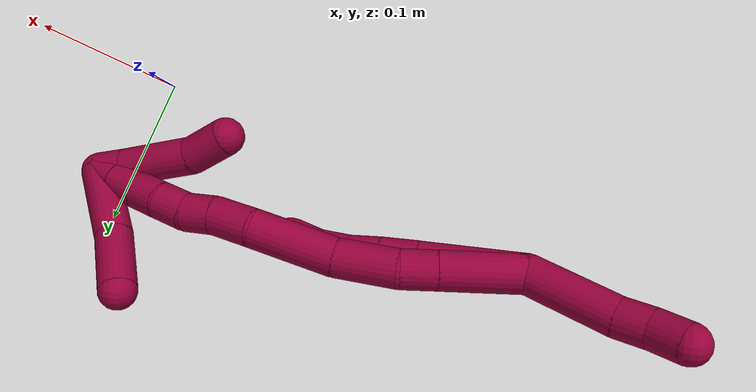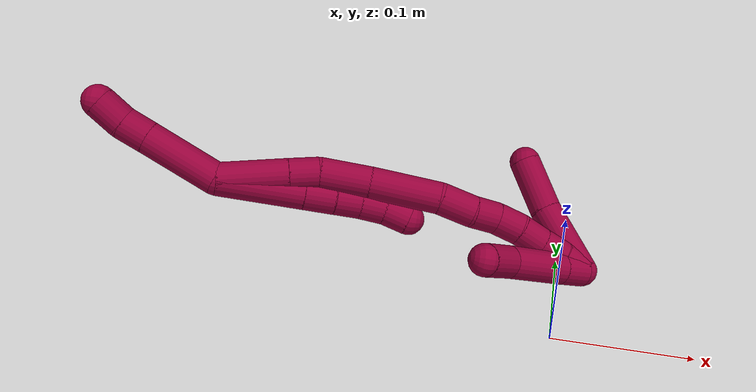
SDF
<sdf version="1.7">
 <world name="default">
  <model name="8">
   <static>0</static>
   <link name="8">
    <collision name="collision-cylinder-e_1_2_8">
     <pose>0.00012 0.000576 -0.032877 -3.12408 0.003651 -0.411105</pose>
     <geometry><cylinder><radius>0.0125</radius><length>0.065764</length></cylinder></geometry>
     <surface>
      <friction><ode><mu>1.16</mu><mu2>1.16</mu2><slip1>0</slip1><slip2>0</slip2></ode></friction>
      <contact><ode><kp>1e+06</kp><kd>1</kd><max_vel>0</max_vel><min_depth>0.001</min_depth></ode></contact>
     </surface>
    </collision>
    <visual name="visual-cylinder-e_1_2_8">
     <pose>0.00012 0.000576 -0.032877 -3.12408 0.003651 -0.411105</pose>
     <geometry><cylinder><radius>0.0125</radius><length>0.065764</length></cylinder></geometry>
     <material><ambient>0.584314 0 0.227451 1</ambient></material>
    </visual>
    <collision name="collision-cylinder-e_2_8_9">
     <pose>0.000157 0.00147 -0.077571 -3.11465 -0.007044 0.51143</pose>
     <geometry><cylinder><radius>0.0125</radius><length>0.023644</length></cylinder></geometry>
     <surface>
      <friction><ode><mu>1.16</mu><mu2>1.16</mu2><slip1>0</slip1><slip2>0</slip2></ode></friction>
      <contact><ode><kp>1e+06</kp><kd>1</kd><max_vel>0</max_vel><min_depth>0.001</min_depth></ode></contact>
     </surface>
    </collision>
    <visual name="visual-cylinder-e_2_8_9">
     <pose>0.000157 0.00147 -0.077571 -3.11465 -0.007044 0.51143</pose>
     <geometry><cylinder><radius>0.0125</radius><length>0.023644</length></cylinder></geometry>
     <material><ambient>0.584314 0 0.227451 1</ambient></material>
    </visual>
    <collision name="collision-cylinder-e_3_9_10">
     <pose>-0.000379 0.002415 -0.099629 -3.08053 -0.044048 1.24969</pose>
     <geometry><cylinder><radius>0.0125</radius><length>0.020541</length></cylinder></geometry>
     <surface>
      <friction><ode><mu>1.16</mu><mu2>1.16</mu2><slip1>0</slip1><slip2>0</slip2></ode></friction>
      <contact><ode><kp>1e+06</kp><kd>1</kd><max_vel>0</max_vel><min_depth>0.001</min_depth></ode></contact>
     </surface>
    </collision>
    <visual name="visual-cylinder-e_3_9_10">
     <pose>-0.000379 0.002415 -0.099629 -3.08053 -0.044048 1.24969</pose>
     <geometry><cylinder><radius>0.0125</radius><length>0.020541</length></cylinder></geometry>
     <material><ambient>0.584314 0 0.227451 1</ambient></material>
    </visual>
    <collision name="collision-cylinder-e_4_10_11">
     <pose>-0.000994 0.002448 -0.119872 3.08241 -0.016237 -0.53541</pose>
     <geometry><cylinder><radius>0.0125</radius><length>0.02004</length></cylinder></geometry>
     <surface>
      <friction><ode><mu>1.16</mu><mu2>1.16</mu2><slip1>0</slip1><slip2>0</slip2></ode></friction>
      <contact><ode><kp>1e+06</kp><kd>1</kd><max_vel>0</max_vel><min_depth>0.001</min_depth></ode></contact>
     </surface>
    </collision>
    <visual name="visual-cylinder-e_4_10_11">
     <pose>-0.000994 0.002448 -0.119872 3.08241 -0.016237 -0.53541</pose>
     <geometry><cylinder><radius>0.0125</radius><length>0.02004</length></cylinder></geometry>
     <material><ambient>0.584314 0 0.227451 1</ambient></material>
    </visual>
    <collision name="collision-cylinder-e_5_11_6">
     <pose>-0.001715 -0.000868 -0.139485 2.86543 -0.055833 -0.396596</pose>
     <geometry><cylinder><radius>0.0125</radius><length>0.020011</length></cylinder></geometry>
     <surface>
      <friction><ode><mu>1.16</mu><mu2>1.16</mu2><slip1>0</slip1><slip2>0</slip2></ode></friction>
      <contact><ode><kp>1e+06</kp><kd>1</kd><max_vel>0</max_vel><min_depth>0.001</min_depth></ode></contact>
     </surface>
    </collision>
    <visual name="visual-cylinder-e_5_11_6">
     <pose>-0.001715 -0.000868 -0.139485 2.86543 -0.055833 -0.396596</pose>
     <geometry><cylinder><radius>0.0125</radius><length>0.020011</length></cylinder></geometry>
     <material><ambient>0.584314 0 0.227451 1</ambient></material>
    </visual>
    <collision name="collision-cylinder-e_1_2_12">
     <pose>0.00472 0.010024 0.026677 -0.359452 0.16413 -0.029885</pose>
     <geometry><cylinder><radius>0.0125</radius><length>0.057772</length></cylinder></geometry>
     <surface>
      <friction><ode><mu>1.16</mu><mu2>1.16</mu2><slip1>0</slip1><slip2>0</slip2></ode></friction>
      <contact><ode><kp>1e+06</kp><kd>1</kd><max_vel>0</max_vel><min_depth>0.001</min_depth></ode></contact>
     </surface>
    </collision>
    <visual name="visual-cylinder-e_1_2_12">
     <pose>0.00472 0.010024 0.026677 -0.359452 0.16413 -0.029885</pose>
     <geometry><cylinder><radius>0.0125</radius><length>0.057772</length></cylinder></geometry>
     <material><ambient>0.584314 0 0.227451 1</ambient></material>
    </visual>
    <collision name="collision-cylinder-e_2_12_13">
     <pose>0.012249 0.02248 0.062929 -0.24866 0.277009 -0.034839</pose>
     <geometry><cylinder><radius>0.0125</radius><length>0.020541</length></cylinder></geometry>
     <surface>
      <friction><ode><mu>1.16</mu><mu2>1.16</mu2><slip1>0</slip1><slip2>0</slip2></ode></friction>
      <contact><ode><kp>1e+06</kp><kd>1</kd><max_vel>0</max_vel><min_depth>0.001</min_depth></ode></contact>
     </surface>
    </collision>
    <visual name="visual-cylinder-e_2_12_13">
     <pose>0.012249 0.02248 0.062929 -0.24866 0.277009 -0.034839</pose>
     <geometry><cylinder><radius>0.0125</radius><length>0.020541</length></cylinder></geometry>
     <material><ambient>0.584314 0 0.227451 1</ambient></material>
    </visual>
    <collision name="collision-cylinder-e_3_13_5">
     <pose>0.019802 0.028426 0.081599 -0.368736 0.452886 -0.085878</pose>
     <geometry><cylinder><radius>0.0125</radius><length>0.021686</length></cylinder></geometry>
     <surface>
      <friction><ode><mu>1.16</mu><mu2>1.16</mu2><slip1>0</slip1><slip2>0</slip2></ode></friction>
      <contact><ode><kp>1e+06</kp><kd>1</kd><max_vel>0</max_vel><min_depth>0.001</min_depth></ode></contact>
     </surface>
    </collision>
    <visual name="visual-cylinder-e_3_13_5">
     <pose>0.019802 0.028426 0.081599 -0.368736 0.452886 -0.085878</pose>
     <geometry><cylinder><radius>0.0125</radius><length>0.021686</length></cylinder></geometry>
     <material><ambient>0.584314 0 0.227451 1</ambient></material>
    </visual>
    <collision name="collision-cylinder-e_1_2_14">
     <pose>0.005306 0.003892 -0.025901 -2.99245 0.199857 -1.86083</pose>
     <geometry><cylinder><radius>0.0125</radius><length>0.053448</length></cylinder></geometry>
     <surface>
      <friction><ode><mu>1.16</mu><mu2>1.16</mu2><slip1>0</slip1><slip2>0</slip2></ode></friction>
      <contact><ode><kp>1e+06</kp><kd>1</kd><max_vel>0</max_vel><min_depth>0.001</min_depth></ode></contact>
     </surface>
    </collision>
    <visual name="visual-cylinder-e_1_2_14">
     <pose>0.005306 0.003892 -0.025901 -2.99245 0.199857 -1.86083</pose>
     <geometry><cylinder><radius>0.0125</radius><length>0.053448</length></cylinder></geometry>
     <material><ambient>0.584314 0 0.227451 1</ambient></material>
    </visual>
    <collision name="collision-cylinder-e_2_14_15">
     <pose>0.012691 0.009437 -0.062899 -2.99369 0.183288 -1.78463</pose>
     <geometry><cylinder><radius>0.0125</radius><length>0.02282</length></cylinder></geometry>
     <surface>
      <friction><ode><mu>1.16</mu><mu2>1.16</mu2><slip1>0</slip1><slip2>0</slip2></ode></friction>
      <contact><ode><kp>1e+06</kp><kd>1</kd><max_vel>0</max_vel><min_depth>0.001</min_depth></ode></contact>
     </surface>
    </collision>
    <visual name="visual-cylinder-e_2_14_15">
     <pose>0.012691 0.009437 -0.062899 -2.99369 0.183288 -1.78463</pose>
     <geometry><cylinder><radius>0.0125</radius><length>0.02282</length></cylinder></geometry>
     <material><ambient>0.584314 0 0.227451 1</ambient></material>
    </visual>
    <collision name="collision-cylinder-e_3_15_16">
     <pose>0.01548 0.010421 -0.093706 3.10764 0.035994 1.62922</pose>
     <geometry><cylinder><radius>0.0125</radius><length>0.039469</length></cylinder></geometry>
     <surface>
      <friction><ode><mu>1.16</mu><mu2>1.16</mu2><slip1>0</slip1><slip2>0</slip2></ode></friction>
      <contact><ode><kp>1e+06</kp><kd>1</kd><max_vel>0</max_vel><min_depth>0.001</min_depth></ode></contact>
     </surface>
    </collision>
    <visual name="visual-cylinder-e_3_15_16">
     <pose>0.01548 0.010421 -0.093706 3.10764 0.035994 1.62922</pose>
     <geometry><cylinder><radius>0.0125</radius><length>0.039469</length></cylinder></geometry>
     <material><ambient>0.584314 0 0.227451 1</ambient></material>
    </visual>
    <collision name="collision-cylinder-e_4_16_17">
     <pose>0.019618 0.004884 -0.140276 2.96232 0.124907 1.21576</pose>
     <geometry><cylinder><radius>0.0125</radius><length>0.055023</length></cylinder></geometry>
     <surface>
      <friction><ode><mu>1.16</mu><mu2>1.16</mu2><slip1>0</slip1><slip2>0</slip2></ode></friction>
      <contact><ode><kp>1e+06</kp><kd>1</kd><max_vel>0</max_vel><min_depth>0.001</min_depth></ode></contact>
     </surface>
    </collision>
    <visual name="visual-cylinder-e_4_16_17">
     <pose>0.019618 0.004884 -0.140276 2.96232 0.124907 1.21576</pose>
     <geometry><cylinder><radius>0.0125</radius><length>0.055023</length></cylinder></geometry>
     <material><ambient>0.584314 0 0.227451 1</ambient></material>
    </visual>
    <collision name="collision-cylinder-e_5_17_18">
     <pose>0.021865 -0.00271 -0.180543 2.94102 -0.086095 -0.808957</pose>
     <geometry><cylinder><radius>0.0125</radius><length>0.027465</length></cylinder></geometry>
     <surface>
      <friction><ode><mu>1.16</mu><mu2>1.16</mu2><slip1>0</slip1><slip2>0</slip2></ode></friction>
      <contact><ode><kp>1e+06</kp><kd>1</kd><max_vel>0</max_vel><min_depth>0.001</min_depth></ode></contact>
     </surface>
    </collision>
    <visual name="visual-cylinder-e_5_17_18">
     <pose>0.021865 -0.00271 -0.180543 2.94102 -0.086095 -0.808957</pose>
     <geometry><cylinder><radius>0.0125</radius><length>0.027465</length></cylinder></geometry>
     <material><ambient>0.584314 0 0.227451 1</ambient></material>
    </visual>
    <collision name="collision-cylinder-e_6_18_19">
     <pose>0.019591 -0.005542 -0.204097 3.13109 -0.107323 -2.94665</pose>
     <geometry><cylinder><radius>0.0125</radius><length>0.02041</length></cylinder></geometry>
     <surface>
      <friction><ode><mu>1.16</mu><mu2>1.16</mu2><slip1>0</slip1><slip2>0</slip2></ode></friction>
      <contact><ode><kp>1e+06</kp><kd>1</kd><max_vel>0</max_vel><min_depth>0.001</min_depth></ode></contact>
     </surface>
    </collision>
    <visual name="visual-cylinder-e_6_18_19">
     <pose>0.019591 -0.005542 -0.204097 3.13109 -0.107323 -2.94665</pose>
     <geometry><cylinder><radius>0.0125</radius><length>0.02041</length></cylinder></geometry>
     <material><ambient>0.584314 0 0.227451 1</ambient></material>
    </visual>
    <collision name="collision-cylinder-e_7_19_20">
     <pose>0.017656 -0.008534 -0.224072 2.85603 -0.081999 -0.555931</pose>
     <geometry><cylinder><radius>0.0125</radius><length>0.020559</length></cylinder></geometry>
     <surface>
      <friction><ode><mu>1.16</mu><mu2>1.16</mu2><slip1>0</slip1><slip2>0</slip2></ode></friction>
      <contact><ode><kp>1e+06</kp><kd>1</kd><max_vel>0</max_vel><min_depth>0.001</min_depth></ode></contact>
     </surface>
    </collision>
    <visual name="visual-cylinder-e_7_19_20">
     <pose>0.017656 -0.008534 -0.224072 2.85603 -0.081999 -0.555931</pose>
     <geometry><cylinder><radius>0.0125</radius><length>0.020559</length></cylinder></geometry>
     <material><ambient>0.584314 0 0.227451 1</ambient></material>
    </visual>
    <collision name="collision-cylinder-e_8_20_21">
     <pose>0.014377 -0.014482 -0.243395 2.82962 -0.239629 -1.30673</pose>
     <geometry><cylinder><radius>0.0125</radius><length>0.020535</length></cylinder></geometry>
     <surface>
      <friction><ode><mu>1.16</mu><mu2>1.16</mu2><slip1>0</slip1><slip2>0</slip2></ode></friction>
      <contact><ode><kp>1e+06</kp><kd>1</kd><max_vel>0</max_vel><min_depth>0.001</min_depth></ode></contact>
     </surface>
    </collision>
    <visual name="visual-cylinder-e_8_20_21">
     <pose>0.014377 -0.014482 -0.243395 2.82962 -0.239629 -1.30673</pose>
     <geometry><cylinder><radius>0.0125</radius><length>0.020535</length></cylinder></geometry>
     <material><ambient>0.584314 0 0.227451 1</ambient></material>
    </visual>
    <collision name="collision-cylinder-e_9_21_22">
     <pose>0.00997 -0.02059 -0.262281 2.82794 -0.196868 -1.11652</pose>
     <geometry><cylinder><radius>0.0125</radius><length>0.020139</length></cylinder></geometry>
     <surface>
      <friction><ode><mu>1.16</mu><mu2>1.16</mu2><slip1>0</slip1><slip2>0</slip2></ode></friction>
      <contact><ode><kp>1e+06</kp><kd>1</kd><max_vel>0</max_vel><min_depth>0.001</min_depth></ode></contact>
     </surface>
    </collision>
    <visual name="visual-cylinder-e_9_21_22">
     <pose>0.00997 -0.02059 -0.262281 2.82794 -0.196868 -1.11652</pose>
     <geometry><cylinder><radius>0.0125</radius><length>0.020139</length></cylinder></geometry>
     <material><ambient>0.584314 0 0.227451 1</ambient></material>
    </visual>
    <collision name="collision-cylinder-e_10_22_1">
     <pose>0.005285 -0.026994 -0.280767 2.78788 -0.273125 -1.31095</pose>
     <geometry><cylinder><radius>0.0125</radius><length>0.020131</length></cylinder></geometry>
     <surface>
      <friction><ode><mu>1.16</mu><mu2>1.16</mu2><slip1>0</slip1><slip2>0</slip2></ode></friction>
      <contact><ode><kp>1e+06</kp><kd>1</kd><max_vel>0</max_vel><min_depth>0.001</min_depth></ode></contact>
     </surface>
    </collision>
    <visual name="visual-cylinder-e_10_22_1">
     <pose>0.005285 -0.026994 -0.280767 2.78788 -0.273125 -1.31095</pose>
     <geometry><cylinder><radius>0.0125</radius><length>0.020131</length></cylinder></geometry>
     <material><ambient>0.584314 0 0.227451 1</ambient></material>
    </visual>
    <collision name="collision-cylinder-e_1_1_23">
     <pose>0.004094 -0.032459 -0.279654 0.203649 0.145175 0.014859</pose>
     <geometry><cylinder><radius>0.0125</radius><length>0.021064</length></cylinder></geometry>
     <surface>
      <friction><ode><mu>1.16</mu><mu2>1.16</mu2><slip1>0</slip1><slip2>0</slip2></ode></friction>
      <contact><ode><kp>1e+06</kp><kd>1</kd><max_vel>0</max_vel><min_depth>0.001</min_depth></ode></contact>
     </surface>
    </collision>
    <visual name="visual-cylinder-e_1_1_23">
     <pose>0.004094 -0.032459 -0.279654 0.203649 0.145175 0.014859</pose>
     <geometry><cylinder><radius>0.0125</radius><length>0.021064</length></cylinder></geometry>
     <material><ambient>0.584314 0 0.227451 1</ambient></material>
    </visual>
    <collision name="collision-cylinder-e_2_23_24">
     <pose>0.010228 -0.039714 -0.245386 0.210739 0.185234 0.019646</pose>
     <geometry><cylinder><radius>0.0125</radius><length>0.050069</length></cylinder></geometry>
     <surface>
      <friction><ode><mu>1.16</mu><mu2>1.16</mu2><slip1>0</slip1><slip2>0</slip2></ode></friction>
      <contact><ode><kp>1e+06</kp><kd>1</kd><max_vel>0</max_vel><min_depth>0.001</min_depth></ode></contact>
     </surface>
    </collision>
    <visual name="visual-cylinder-e_2_23_24">
     <pose>0.010228 -0.039714 -0.245386 0.210739 0.185234 0.019646</pose>
     <geometry><cylinder><radius>0.0125</radius><length>0.050069</length></cylinder></geometry>
     <material><ambient>0.584314 0 0.227451 1</ambient></material>
    </visual>
    <collision name="collision-cylinder-e_3_24_4">
     <pose>0.020274 -0.050663 -0.209277 0.448843 0.386098 0.089186</pose>
     <geometry><cylinder><radius>0.0125</radius><length>0.028867</length></cylinder></geometry>
     <surface>
      <friction><ode><mu>1.16</mu><mu2>1.16</mu2><slip1>0</slip1><slip2>0</slip2></ode></friction>
      <contact><ode><kp>1e+06</kp><kd>1</kd><max_vel>0</max_vel><min_depth>0.001</min_depth></ode></contact>
     </surface>
    </collision>
    <visual name="visual-cylinder-e_3_24_4">
     <pose>0.020274 -0.050663 -0.209277 0.448843 0.386098 0.089186</pose>
     <geometry><cylinder><radius>0.0125</radius><length>0.028867</length></cylinder></geometry>
     <material><ambient>0.584314 0 0.227451 1</ambient></material>
    </visual>
    <collision name="collision-cylinder-e_1_1_25">
     <pose>0.009574 -0.007256 -0.275138 -1.00333 0.250346 -0.137809</pose>
     <geometry><cylinder><radius>0.0125</radius><length>0.056539</length></cylinder></geometry>
     <surface>
      <friction><ode><mu>1.16</mu><mu2>1.16</mu2><slip1>0</slip1><slip2>0</slip2></ode></friction>
      <contact><ode><kp>1e+06</kp><kd>1</kd><max_vel>0</max_vel><min_depth>0.001</min_depth></ode></contact>
     </surface>
    </collision>
    <visual name="visual-cylinder-e_1_1_25">
     <pose>0.009574 -0.007256 -0.275138 -1.00333 0.250346 -0.137809</pose>
     <geometry><cylinder><radius>0.0125</radius><length>0.056539</length></cylinder></geometry>
     <material><ambient>0.584314 0 0.227451 1</ambient></material>
    </visual>
    <collision name="collision-cylinder-e_2_25_3">
     <pose>0.023857 0.033953 -0.250871 -1.08577 0.3416 -0.207388</pose>
     <geometry><cylinder><radius>0.0125</radius><length>0.043461</length></cylinder></geometry>
     <surface>
      <friction><ode><mu>1.16</mu><mu2>1.16</mu2><slip1>0</slip1><slip2>0</slip2></ode></friction>
      <contact><ode><kp>1e+06</kp><kd>1</kd><max_vel>0</max_vel><min_depth>0.001</min_depth></ode></contact>
     </surface>
    </collision>
    <visual name="visual-cylinder-e_2_25_3">
     <pose>0.023857 0.033953 -0.250871 -1.08577 0.3416 -0.207388</pose>
     <geometry><cylinder><radius>0.0125</radius><length>0.043461</length></cylinder></geometry>
     <material><ambient>0.584314 0 0.227451 1</ambient></material>
    </visual>
    <collision name="collision-sphere-3">
     <pose>0.031136 0.052066 -0.241325 0 -0 0</pose>
     <geometry><sphere><radius>0.0125</radius></sphere></geometry>
     <surface>
      <friction><ode><mu>1.16</mu><mu2>1.16</mu2><slip1>0</slip1><slip2>0</slip2></ode></friction>
      <contact><ode><kp>1e+06</kp><kd>1</kd><max_vel>0</max_vel><min_depth>0.001</min_depth></ode></contact>
     </surface>
    </collision>
    <visual name="visual-sphere-3">
     <pose>0.031136 0.052066 -0.241325 0 -0 0</pose>
     <geometry><sphere><radius>0.0125</radius></sphere></geometry>
     <material><ambient>0.584314 0 0.227451 1</ambient></material>
    </visual>
    <collision name="collision-sphere-25">
     <pose>0.016577 0.01584 -0.260417 0 -0 0</pose>
     <geometry><sphere><radius>0.0125</radius></sphere></geometry>
     <surface>
      <friction><ode><mu>1.16</mu><mu2>1.16</mu2><slip1>0</slip1><slip2>0</slip2></ode></friction>
      <contact><ode><kp>1e+06</kp><kd>1</kd><max_vel>0</max_vel><min_depth>0.001</min_depth></ode></contact>
     </surface>
    </collision>
    <visual name="visual-sphere-25">
     <pose>0.016577 0.01584 -0.260417 0 -0 0</pose>
     <geometry><sphere><radius>0.0125</radius></sphere></geometry>
     <material><ambient>0.584314 0 0.227451 1</ambient></material>
    </visual>
    <collision name="collision-sphere-4">
     <pose>0.02571 -0.056465 -0.197231 0 -0 0</pose>
     <geometry><sphere><radius>0.0125</radius></sphere></geometry>
     <surface>
      <friction><ode><mu>1.16</mu><mu2>1.16</mu2><slip1>0</slip1><slip2>0</slip2></ode></friction>
      <contact><ode><kp>1e+06</kp><kd>1</kd><max_vel>0</max_vel><min_depth>0.001</min_depth></ode></contact>
     </surface>
    </collision>
    <visual name="visual-sphere-4">
     <pose>0.02571 -0.056465 -0.197231 0 -0 0</pose>
     <geometry><sphere><radius>0.0125</radius></sphere></geometry>
     <material><ambient>0.584314 0 0.227451 1</ambient></material>
    </visual>
    <collision name="collision-sphere-24">
     <pose>0.014839 -0.044861 -0.221324 0 -0 0</pose>
     <geometry><sphere><radius>0.0125</radius></sphere></geometry>
     <surface>
      <friction><ode><mu>1.16</mu><mu2>1.16</mu2><slip1>0</slip1><slip2>0</slip2></ode></friction>
      <contact><ode><kp>1e+06</kp><kd>1</kd><max_vel>0</max_vel><min_depth>0.001</min_depth></ode></contact>
     </surface>
    </collision>
    <visual name="visual-sphere-24">
     <pose>0.014839 -0.044861 -0.221324 0 -0 0</pose>
     <geometry><sphere><radius>0.0125</radius></sphere></geometry>
     <material><ambient>0.584314 0 0.227451 1</ambient></material>
    </visual>
    <collision name="collision-sphere-23">
     <pose>0.005617 -0.034567 -0.269448 0 -0 0</pose>
     <geometry><sphere><radius>0.0125</radius></sphere></geometry>
     <surface>
      <friction><ode><mu>1.16</mu><mu2>1.16</mu2><slip1>0</slip1><slip2>0</slip2></ode></friction>
      <contact><ode><kp>1e+06</kp><kd>1</kd><max_vel>0</max_vel><min_depth>0.001</min_depth></ode></contact>
     </surface>
    </collision>
    <visual name="visual-sphere-23">
     <pose>0.005617 -0.034567 -0.269448 0 -0 0</pose>
     <geometry><sphere><radius>0.0125</radius></sphere></geometry>
     <material><ambient>0.584314 0 0.227451 1</ambient></material>
    </visual>
    <collision name="collision-sphere-1">
     <pose>0.00257 -0.030352 -0.289859 0 -0 0</pose>
     <geometry><sphere><radius>0.0125</radius></sphere></geometry>
     <surface>
      <friction><ode><mu>1.16</mu><mu2>1.16</mu2><slip1>0</slip1><slip2>0</slip2></ode></friction>
      <contact><ode><kp>1e+06</kp><kd>1</kd><max_vel>0</max_vel><min_depth>0.001</min_depth></ode></contact>
     </surface>
    </collision>
    <visual name="visual-sphere-1">
     <pose>0.00257 -0.030352 -0.289859 0 -0 0</pose>
     <geometry><sphere><radius>0.0125</radius></sphere></geometry>
     <material><ambient>0.584314 0 0.227451 1</ambient></material>
    </visual>
    <collision name="collision-sphere-22">
     <pose>0.008 -0.023637 -0.271675 0 -0 0</pose>
     <geometry><sphere><radius>0.0125</radius></sphere></geometry>
     <surface>
      <friction><ode><mu>1.16</mu><mu2>1.16</mu2><slip1>0</slip1><slip2>0</slip2></ode></friction>
      <contact><ode><kp>1e+06</kp><kd>1</kd><max_vel>0</max_vel><min_depth>0.001</min_depth></ode></contact>
     </surface>
    </collision>
    <visual name="visual-sphere-22">
     <pose>0.008 -0.023637 -0.271675 0 -0 0</pose>
     <geometry><sphere><radius>0.0125</radius></sphere></geometry>
     <material><ambient>0.584314 0 0.227451 1</ambient></material>
    </visual>
    <collision name="collision-sphere-21">
     <pose>0.01194 -0.017543 -0.252888 0 -0 0</pose>
     <geometry><sphere><radius>0.0125</radius></sphere></geometry>
     <surface>
      <friction><ode><mu>1.16</mu><mu2>1.16</mu2><slip1>0</slip1><slip2>0</slip2></ode></friction>
      <contact><ode><kp>1e+06</kp><kd>1</kd><max_vel>0</max_vel><min_depth>0.001</min_depth></ode></contact>
     </surface>
    </collision>
    <visual name="visual-sphere-21">
     <pose>0.01194 -0.017543 -0.252888 0 -0 0</pose>
     <geometry><sphere><radius>0.0125</radius></sphere></geometry>
     <material><ambient>0.584314 0 0.227451 1</ambient></material>
    </visual>
    <collision name="collision-sphere-6">
     <pose>-0.002273 -0.003592 -0.149096 0 -0 0</pose>
     <geometry><sphere><radius>0.0125</radius></sphere></geometry>
     <surface>
      <friction><ode><mu>1.16</mu><mu2>1.16</mu2><slip1>0</slip1><slip2>0</slip2></ode></friction>
      <contact><ode><kp>1e+06</kp><kd>1</kd><max_vel>0</max_vel><min_depth>0.001</min_depth></ode></contact>
     </surface>
    </collision>
    <visual name="visual-sphere-6">
     <pose>-0.002273 -0.003592 -0.149096 0 -0 0</pose>
     <geometry><sphere><radius>0.0125</radius></sphere></geometry>
     <material><ambient>0.584314 0 0.227451 1</ambient></material>
    </visual>
    <collision name="collision-sphere-11">
     <pose>-0.001156 0.001856 -0.129873 0 -0 0</pose>
     <geometry><sphere><radius>0.0125</radius></sphere></geometry>
     <surface>
      <friction><ode><mu>1.16</mu><mu2>1.16</mu2><slip1>0</slip1><slip2>0</slip2></ode></friction>
      <contact><ode><kp>1e+06</kp><kd>1</kd><max_vel>0</max_vel><min_depth>0.001</min_depth></ode></contact>
     </surface>
    </collision>
    <visual name="visual-sphere-11">
     <pose>-0.001156 0.001856 -0.129873 0 -0 0</pose>
     <geometry><sphere><radius>0.0125</radius></sphere></geometry>
     <material><ambient>0.584314 0 0.227451 1</ambient></material>
    </visual>
    <collision name="collision-sphere-10">
     <pose>-0.000831 0.003041 -0.109871 0 -0 0</pose>
     <geometry><sphere><radius>0.0125</radius></sphere></geometry>
     <surface>
      <friction><ode><mu>1.16</mu><mu2>1.16</mu2><slip1>0</slip1><slip2>0</slip2></ode></friction>
      <contact><ode><kp>1e+06</kp><kd>1</kd><max_vel>0</max_vel><min_depth>0.001</min_depth></ode></contact>
     </surface>
    </collision>
    <visual name="visual-sphere-10">
     <pose>-0.000831 0.003041 -0.109871 0 -0 0</pose>
     <geometry><sphere><radius>0.0125</radius></sphere></geometry>
     <material><ambient>0.584314 0 0.227451 1</ambient></material>
    </visual>
    <collision name="collision-sphere-9">
     <pose>7.4e-05 0.001788 -0.089388 0 -0 0</pose>
     <geometry><sphere><radius>0.0125</radius></sphere></geometry>
     <surface>
      <friction><ode><mu>1.16</mu><mu2>1.16</mu2><slip1>0</slip1><slip2>0</slip2></ode></friction>
      <contact><ode><kp>1e+06</kp><kd>1</kd><max_vel>0</max_vel><min_depth>0.001</min_depth></ode></contact>
     </surface>
    </collision>
    <visual name="visual-sphere-9">
     <pose>7.4e-05 0.001788 -0.089388 0 -0 0</pose>
     <geometry><sphere><radius>0.0125</radius></sphere></geometry>
     <material><ambient>0.584314 0 0.227451 1</ambient></material>
    </visual>
    <collision name="collision-sphere-2">
     <geometry><sphere><radius>0.0125</radius></sphere></geometry>
     <surface>
      <friction><ode><mu>1.16</mu><mu2>1.16</mu2><slip1>0</slip1><slip2>0</slip2></ode></friction>
      <contact><ode><kp>1e+06</kp><kd>1</kd><max_vel>0</max_vel><min_depth>0.001</min_depth></ode></contact>
     </surface>
    </collision>
    <visual name="visual-sphere-2">
     <geometry><sphere><radius>0.0125</radius></sphere></geometry>
     <material><ambient>0.584314 0 0.227451 1</ambient></material>
    </visual>
    <collision name="collision-sphere-19">
     <pose>0.018498 -0.005648 -0.214242 0 -0 0</pose>
     <geometry><sphere><radius>0.0125</radius></sphere></geometry>
     <surface>
      <friction><ode><mu>1.16</mu><mu2>1.16</mu2><slip1>0</slip1><slip2>0</slip2></ode></friction>
      <contact><ode><kp>1e+06</kp><kd>1</kd><max_vel>0</max_vel><min_depth>0.001</min_depth></ode></contact>
     </surface>
    </collision>
    <visual name="visual-sphere-19">
     <pose>0.018498 -0.005648 -0.214242 0 -0 0</pose>
     <geometry><sphere><radius>0.0125</radius></sphere></geometry>
     <material><ambient>0.584314 0 0.227451 1</ambient></material>
    </visual>
    <collision name="collision-sphere-8">
     <pose>0.00024 0.001151 -0.065753 0 -0 0</pose>
     <geometry><sphere><radius>0.0125</radius></sphere></geometry>
     <surface>
      <friction><ode><mu>1.16</mu><mu2>1.16</mu2><slip1>0</slip1><slip2>0</slip2></ode></friction>
      <contact><ode><kp>1e+06</kp><kd>1</kd><max_vel>0</max_vel><min_depth>0.001</min_depth></ode></contact>
     </surface>
    </collision>
    <visual name="visual-sphere-8">
     <pose>0.00024 0.001151 -0.065753 0 -0 0</pose>
     <geometry><sphere><radius>0.0125</radius></sphere></geometry>
     <material><ambient>0.584314 0 0.227451 1</ambient></material>
    </visual>
    <collision name="collision-sphere-12">
     <pose>0.00944 0.020049 0.053353 0 -0 0</pose>
     <geometry><sphere><radius>0.0125</radius></sphere></geometry>
     <surface>
      <friction><ode><mu>1.16</mu><mu2>1.16</mu2><slip1>0</slip1><slip2>0</slip2></ode></friction>
      <contact><ode><kp>1e+06</kp><kd>1</kd><max_vel>0</max_vel><min_depth>0.001</min_depth></ode></contact>
     </surface>
    </collision>
    <visual name="visual-sphere-12">
     <pose>0.00944 0.020049 0.053353 0 -0 0</pose>
     <geometry><sphere><radius>0.0125</radius></sphere></geometry>
     <material><ambient>0.584314 0 0.227451 1</ambient></material>
    </visual>
    <collision name="collision-sphere-13">
     <pose>0.015057 0.024912 0.072504 0 -0 0</pose>
     <geometry><sphere><radius>0.0125</radius></sphere></geometry>
     <surface>
      <friction><ode><mu>1.16</mu><mu2>1.16</mu2><slip1>0</slip1><slip2>0</slip2></ode></friction>
      <contact><ode><kp>1e+06</kp><kd>1</kd><max_vel>0</max_vel><min_depth>0.001</min_depth></ode></contact>
     </surface>
    </collision>
    <visual name="visual-sphere-13">
     <pose>0.015057 0.024912 0.072504 0 -0 0</pose>
     <geometry><sphere><radius>0.0125</radius></sphere></geometry>
     <material><ambient>0.584314 0 0.227451 1</ambient></material>
    </visual>
    <collision name="collision-sphere-5">
     <pose>0.024546 0.03194 0.090693 0 -0 0</pose>
     <geometry><sphere><radius>0.0125</radius></sphere></geometry>
     <surface>
      <friction><ode><mu>1.16</mu><mu2>1.16</mu2><slip1>0</slip1><slip2>0</slip2></ode></friction>
      <contact><ode><kp>1e+06</kp><kd>1</kd><max_vel>0</max_vel><min_depth>0.001</min_depth></ode></contact>
     </surface>
    </collision>
    <visual name="visual-sphere-5">
     <pose>0.024546 0.03194 0.090693 0 -0 0</pose>
     <geometry><sphere><radius>0.0125</radius></sphere></geometry>
     <material><ambient>0.584314 0 0.227451 1</ambient></material>
    </visual>
    <collision name="collision-sphere-14">
     <pose>0.010611 0.007784 -0.051803 0 -0 0</pose>
     <geometry><sphere><radius>0.0125</radius></sphere></geometry>
     <surface>
      <friction><ode><mu>1.16</mu><mu2>1.16</mu2><slip1>0</slip1><slip2>0</slip2></ode></friction>
      <contact><ode><kp>1e+06</kp><kd>1</kd><max_vel>0</max_vel><min_depth>0.001</min_depth></ode></contact>
     </surface>
    </collision>
    <visual name="visual-sphere-14">
     <pose>0.010611 0.007784 -0.051803 0 -0 0</pose>
     <geometry><sphere><radius>0.0125</radius></sphere></geometry>
     <material><ambient>0.584314 0 0.227451 1</ambient></material>
    </visual>
    <collision name="collision-sphere-15">
     <pose>0.01477 0.01109 -0.073995 0 -0 0</pose>
     <geometry><sphere><radius>0.0125</radius></sphere></geometry>
     <surface>
      <friction><ode><mu>1.16</mu><mu2>1.16</mu2><slip1>0</slip1><slip2>0</slip2></ode></friction>
      <contact><ode><kp>1e+06</kp><kd>1</kd><max_vel>0</max_vel><min_depth>0.001</min_depth></ode></contact>
     </surface>
    </collision>
    <visual name="visual-sphere-15">
     <pose>0.01477 0.01109 -0.073995 0 -0 0</pose>
     <geometry><sphere><radius>0.0125</radius></sphere></geometry>
     <material><ambient>0.584314 0 0.227451 1</ambient></material>
    </visual>
    <collision name="collision-sphere-16">
     <pose>0.016191 0.009751 -0.113416 0 -0 0</pose>
     <geometry><sphere><radius>0.0125</radius></sphere></geometry>
     <surface>
      <friction><ode><mu>1.16</mu><mu2>1.16</mu2><slip1>0</slip1><slip2>0</slip2></ode></friction>
      <contact><ode><kp>1e+06</kp><kd>1</kd><max_vel>0</max_vel><min_depth>0.001</min_depth></ode></contact>
     </surface>
    </collision>
    <visual name="visual-sphere-16">
     <pose>0.016191 0.009751 -0.113416 0 -0 0</pose>
     <geometry><sphere><radius>0.0125</radius></sphere></geometry>
     <material><ambient>0.584314 0 0.227451 1</ambient></material>
    </visual>
    <collision name="collision-sphere-17">
     <pose>0.023045 1.6e-05 -0.167136 0 -0 0</pose>
     <geometry><sphere><radius>0.0125</radius></sphere></geometry>
     <surface>
      <friction><ode><mu>1.16</mu><mu2>1.16</mu2><slip1>0</slip1><slip2>0</slip2></ode></friction>
      <contact><ode><kp>1e+06</kp><kd>1</kd><max_vel>0</max_vel><min_depth>0.001</min_depth></ode></contact>
     </surface>
    </collision>
    <visual name="visual-sphere-17">
     <pose>0.023045 1.6e-05 -0.167136 0 -0 0</pose>
     <geometry><sphere><radius>0.0125</radius></sphere></geometry>
     <material><ambient>0.584314 0 0.227451 1</ambient></material>
    </visual>
    <collision name="collision-sphere-18">
     <pose>0.020684 -0.005435 -0.193951 0 -0 0</pose>
     <geometry><sphere><radius>0.0125</radius></sphere></geometry>
     <surface>
      <friction><ode><mu>1.16</mu><mu2>1.16</mu2><slip1>0</slip1><slip2>0</slip2></ode></friction>
      <contact><ode><kp>1e+06</kp><kd>1</kd><max_vel>0</max_vel><min_depth>0.001</min_depth></ode></contact>
     </surface>
    </collision>
    <visual name="visual-sphere-18">
     <pose>0.020684 -0.005435 -0.193951 0 -0 0</pose>
     <geometry><sphere><radius>0.0125</radius></sphere></geometry>
     <material><ambient>0.584314 0 0.227451 1</ambient></material>
    </visual>
    <collision name="collision-sphere-20">
     <pose>0.016814 -0.01142 -0.233902 0 -0 0</pose>
     <geometry><sphere><radius>0.0125</radius></sphere></geometry>
     <surface>
      <friction><ode><mu>1.16</mu><mu2>1.16</mu2><slip1>0</slip1><slip2>0</slip2></ode></friction>
      <contact><ode><kp>1e+06</kp><kd>1</kd><max_vel>0</max_vel><min_depth>0.001</min_depth></ode></contact>
     </surface>
    </collision>
    <visual name="visual-sphere-20">
     <pose>0.016814 -0.01142 -0.233902 0 -0 0</pose>
     <geometry><sphere><radius>0.0125</radius></sphere></geometry>
     <material><ambient>0.584314 0 0.227451 1</ambient></material>
    </visual>
    <inertial>
     <pose>0.010526 -0.002364 -0.134947 0 -0 0</pose>
     <mass>0.75</mass>
     <inertia><ixx>8.6e-05</ixx><ixy>0</ixy><ixz>0</ixz><iyy>9e-06</iyy><iyz>0</iyz><izz>-5.7e-05</izz></inertia>
    </inertial>
   </link>
   <pose>-0.254051 0.013211 0.092802 0.851621 -1.17376 -0.568776</pose>
  </model>
 </world>
</sdf>
